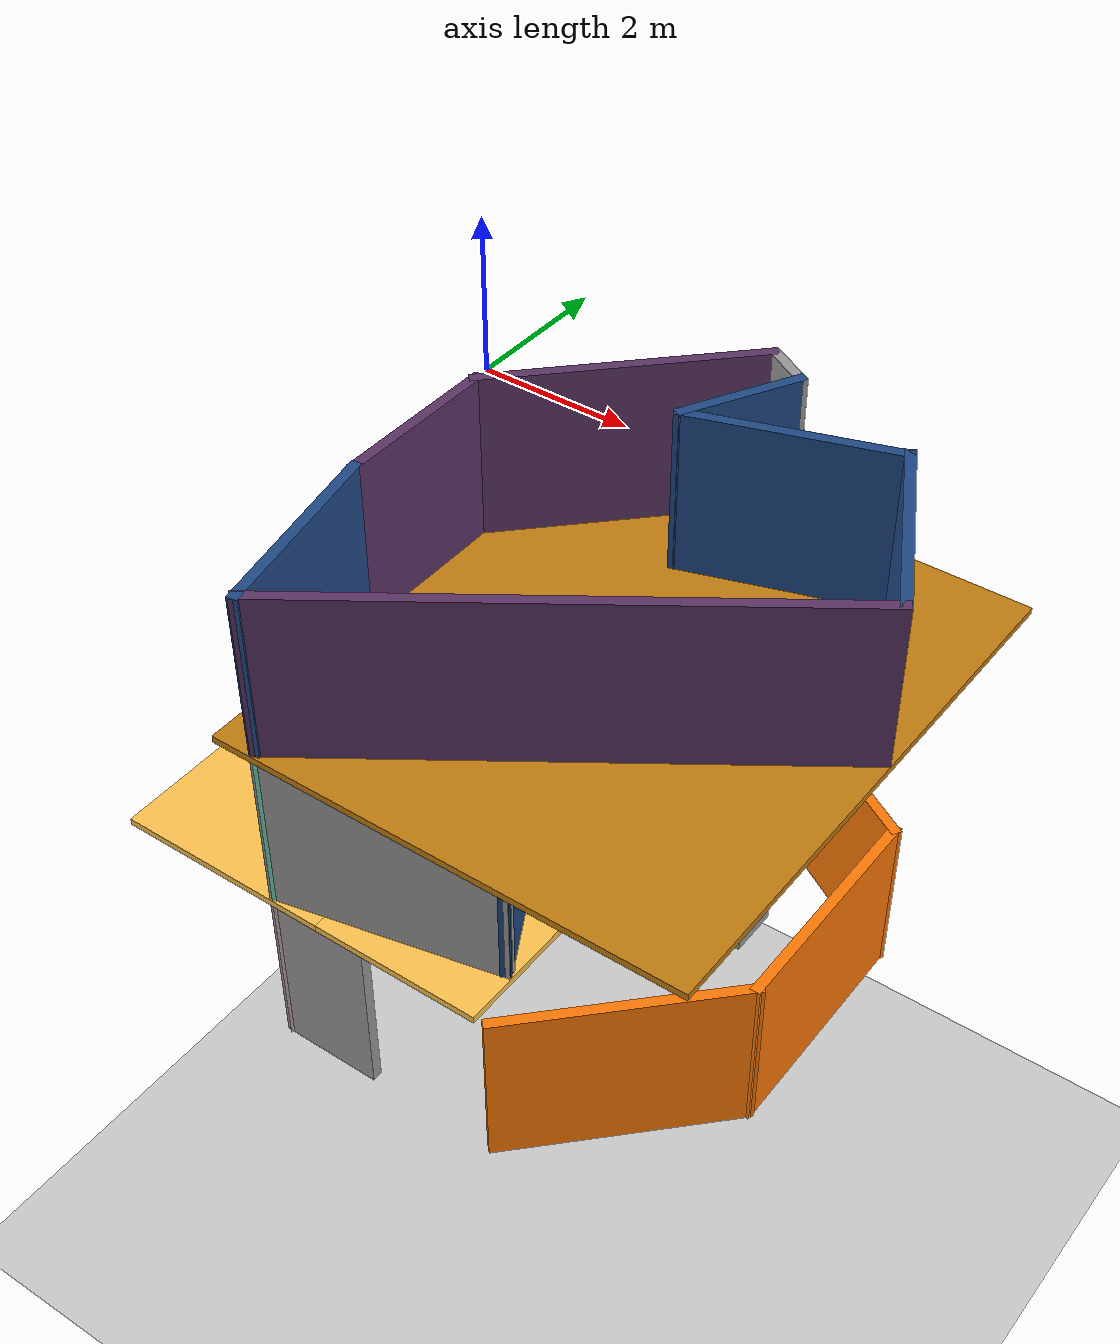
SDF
<?xml version="1.0" ?>
<sdf version='1.7'>
  <world name='default'>
    <light name='sun' type='directional'>
      <cast_shadows>1</cast_shadows>
      <pose>0 0 10 0 -0 0</pose>
      <diffuse>0.8 0.8 0.8 1</diffuse>
      <specular>0.2 0.2 0.2 1</specular>
      <attenuation>
        <range>1000</range>
        <constant>0.9</constant>
        <linear>0.01</linear>
        <quadratic>0.001</quadratic>
      </attenuation>
      <direction>-0.5 0.1 -0.9</direction>
      <spot>
        <inner_angle>0</inner_angle>
        <outer_angle>0</outer_angle>
        <falloff>0</falloff>
      </spot>
    </light>

    <model name='ground_plane'>
      <pose>1.18397 -0.303096 -15 0 -0 0</pose>
      <static>1</static>
      <link name='link'>
        <collision name='collision'>
          <geometry>
            <plane>
              <normal>0 0 1</normal>
              <size>100 100</size>
            </plane>
          </geometry>
          <surface>
            <friction>
              <ode>
                <mu>100</mu>
                <mu2>50</mu2>
              </ode>
              <torsional>
                <ode/>
              </torsional>
            </friction>
            <contact>
              <ode/>
            </contact>
            <bounce/>
          </surface>
          <max_contacts>10</max_contacts>
        </collision>
        <visual name='visual'>
          <cast_shadows>0</cast_shadows>
          <geometry>
            <plane>
              <normal>0 0 1</normal>
              <size>100 100</size>
            </plane>
          </geometry>
          <material>
            <script>
              <uri>file://media/materials/scripts/gazebo.material</uri>
              <name>Gazebo/Grey</name>
            </script>
          </material>
        </visual>
        <self_collide>0</self_collide>
        <enable_wind>0</enable_wind>
        <kinematic>0</kinematic>
      </link>
    </model>

    <gravity>0 0 -9.8</gravity>
    <magnetic_field>6e-06 2.3e-05 -4.2e-05</magnetic_field>
    <atmosphere type='adiabatic'/>
    <physics type='ode'>
      <max_step_size>0.001</max_step_size>
      <real_time_factor>1</real_time_factor>
      <real_time_update_rate>1000</real_time_update_rate>
    </physics>
    <scene>
      <ambient>0.4 0.4 0.4 1</ambient>
      <background>0.7 0.7 0.7 1</background>
      <shadows>1</shadows>
    </scene>
    <wind/>
    <spherical_coordinates>
      <surface_model>EARTH_WGS84</surface_model>
      <latitude_deg>0</latitude_deg>
      <longitude_deg>0</longitude_deg>
      <elevation>0</elevation>
      <heading_deg>0</heading_deg>
    </spherical_coordinates>
    <model name='wackHouse'>
      <pose>1.18397 -0.303096 -8.5 0 -0 0</pose>
      <link name='Floor_0'>
        <pose>-1.28832 0 2.5 0 -0 0</pose>
        <visual name='Floor_0_Visual_0'>
          <pose>-1.25732 0 0.05 0 -0 0</pose>
          <geometry>
            <box>
              <size>3.21268 7.60594 0.1</size>
            </box>
          </geometry>
          <material>
            <script>
              <uri>file://media/materials/scripts/gazebo.material</uri>
              <name>Gazebo/Grey</name>
            </script>
            <ambient>1 0.764706 0.305882 1</ambient>
          </material>
          <meta>
            <layer>1</layer>
          </meta>
        </visual>
        <collision name='Floor_0_Collision_0'>
          <geometry>
            <box>
              <size>3.21268 7.60594 0.1</size>
            </box>
          </geometry>
          <pose>-1.25732 0 0.05 0 -0 0</pose>
          <max_contacts>10</max_contacts>
          <surface>
            <contact>
              <ode/>
            </contact>
            <bounce/>
            <friction>
              <torsional>
                <ode/>
              </torsional>
              <ode/>
            </friction>
          </surface>
        </collision>
        <visual name='Floor_0_Visual_1'>
          <pose>1.60634 -1.40986 0.05 0 -0 0</pose>
          <geometry>
            <box>
              <size>2.51465 4.78622 0.1</size>
            </box>
          </geometry>
          <material>
            <script>
              <uri>file://media/materials/scripts/gazebo.material</uri>
              <name>Gazebo/Grey</name>
            </script>
            <ambient>1 0.764706 0.305882 1</ambient>
          </material>
          <meta>
            <layer>1</layer>
          </meta>
        </visual>
        <collision name='Floor_0_Collision_1'>
          <geometry>
            <box>
              <size>2.51465 4.78622 0.1</size>
            </box>
          </geometry>
          <pose>1.60634 -1.40986 0.05 0 -0 0</pose>
          <max_contacts>10</max_contacts>
          <surface>
            <contact>
              <ode/>
            </contact>
            <bounce/>
            <friction>
              <torsional>
                <ode/>
              </torsional>
              <ode/>
            </friction>
          </surface>
        </collision>
        <visual name='Floor_0_Visual_2'>
          <pose>1.60634 2.78006 0.05 0 -0 0</pose>
          <geometry>
            <box>
              <size>2.51465 2.04583 0.1</size>
            </box>
          </geometry>
          <material>
            <script>
              <uri>file://media/materials/scripts/gazebo.material</uri>
              <name>Gazebo/Grey</name>
            </script>
            <ambient>1 0.764706 0.305882 1</ambient>
          </material>
          <meta>
            <layer>1</layer>
          </meta>
        </visual>
        <collision name='Floor_0_Collision_2'>
          <geometry>
            <box>
              <size>2.51465 2.04583 0.1</size>
            </box>
          </geometry>
          <pose>1.60634 2.78006 0.05 0 -0 0</pose>
          <max_contacts>10</max_contacts>
          <surface>
            <contact>
              <ode/>
            </contact>
            <bounce/>
            <friction>
              <torsional>
                <ode/>
              </torsional>
              <ode/>
            </friction>
          </surface>
        </collision>
        <self_collide>0</self_collide>
        <enable_wind>0</enable_wind>
        <kinematic>0</kinematic>
      </link>
      <link name='Floor_1'>
        <collision name='Floor_1_Collision'>
          <geometry>
            <box>
              <size>6.84258 7.94464 0.1</size>
            </box>
          </geometry>
          <pose>0 0 0.05 0 -0 0</pose>
          <max_contacts>10</max_contacts>
          <surface>
            <contact>
              <ode/>
            </contact>
            <bounce/>
            <friction>
              <torsional>
                <ode/>
              </torsional>
              <ode/>
            </friction>
          </surface>
        </collision>
        <visual name='Floor_1_Visual'>
          <pose>0 0 0.05 0 -0 0</pose>
          <geometry>
            <box>
              <size>6.84258 7.94464 0.1</size>
            </box>
          </geometry>
          <material>
            <script>
              <uri>file://media/materials/scripts/gazebo.material</uri>
              <name>Gazebo/Grey</name>
            </script>
            <ambient>0.756863 0.490196 0.0666667 1</ambient>
          </material>
          <meta>
            <layer>2</layer>
          </meta>
        </visual>
        <pose>1.13026 0.171097 5 0 -0 0</pose>
        <self_collide>0</self_collide>
        <enable_wind>0</enable_wind>
        <kinematic>0</kinematic>
      </link>
      <link name='Stairs_0'>
        <visual name='Stairs_0_Visual_0'>
          <pose>2.32831 1.37019 0.083333 0 -0 -1.5708</pose>
          <geometry>
            <box>
              <size>0.773898 0.225353 0.166667</size>
            </box>
          </geometry>
          <material>
            <script>
              <uri>file://media/materials/scripts/gazebo.material</uri>
              <name>Gazebo/Grey</name>
            </script>
            <ambient>1 1 1 1</ambient>
          </material>
          <meta>
            <layer>0</layer>
          </meta>
        </visual>
        <collision name='Stairs_0_Collision_0'>
          <geometry>
            <box>
              <size>0.773898 0.225353 0.166667</size>
            </box>
          </geometry>
          <pose>2.32831 1.37019 0.083333 0 -0 -1.5708</pose>
          <max_contacts>10</max_contacts>
          <surface>
            <contact>
              <ode/>
            </contact>
            <bounce/>
            <friction>
              <torsional>
                <ode/>
              </torsional>
              <ode/>
            </friction>
          </surface>
        </collision>
        <visual name='Stairs_0_Visual_1'>
          <pose>2.10296 1.37019 0.25 0 -0 -1.5708</pose>
          <geometry>
            <box>
              <size>0.773898 0.225353 0.166667</size>
            </box>
          </geometry>
          <material>
            <script>
              <uri>file://media/materials/scripts/gazebo.material</uri>
              <name>Gazebo/Grey</name>
            </script>
            <ambient>1 1 1 1</ambient>
          </material>
          <meta>
            <layer>0</layer>
          </meta>
        </visual>
        <collision name='Stairs_0_Collision_1'>
          <geometry>
            <box>
              <size>0.773898 0.225353 0.166667</size>
            </box>
          </geometry>
          <pose>2.10296 1.37019 0.25 0 -0 -1.5708</pose>
          <max_contacts>10</max_contacts>
          <surface>
            <contact>
              <ode/>
            </contact>
            <bounce/>
            <friction>
              <torsional>
                <ode/>
              </torsional>
              <ode/>
            </friction>
          </surface>
        </collision>
        <visual name='Stairs_0_Visual_2'>
          <pose>1.87761 1.37019 0.416667 0 -0 -1.5708</pose>
          <geometry>
            <box>
              <size>0.773898 0.225353 0.166667</size>
            </box>
          </geometry>
          <material>
            <script>
              <uri>file://media/materials/scripts/gazebo.material</uri>
              <name>Gazebo/Grey</name>
            </script>
            <ambient>1 1 1 1</ambient>
          </material>
          <meta>
            <layer>0</layer>
          </meta>
        </visual>
        <collision name='Stairs_0_Collision_2'>
          <geometry>
            <box>
              <size>0.773898 0.225353 0.166667</size>
            </box>
          </geometry>
          <pose>1.87761 1.37019 0.416667 0 -0 -1.5708</pose>
          <max_contacts>10</max_contacts>
          <surface>
            <contact>
              <ode/>
            </contact>
            <bounce/>
            <friction>
              <torsional>
                <ode/>
              </torsional>
              <ode/>
            </friction>
          </surface>
        </collision>
        <visual name='Stairs_0_Visual_3'>
          <pose>1.65225 1.37019 0.583333 0 -0 -1.5708</pose>
          <geometry>
            <box>
              <size>0.773898 0.225353 0.166667</size>
            </box>
          </geometry>
          <material>
            <script>
              <uri>file://media/materials/scripts/gazebo.material</uri>
              <name>Gazebo/Grey</name>
            </script>
            <ambient>1 1 1 1</ambient>
          </material>
          <meta>
            <layer>0</layer>
          </meta>
        </visual>
        <collision name='Stairs_0_Collision_3'>
          <geometry>
            <box>
              <size>0.773898 0.225353 0.166667</size>
            </box>
          </geometry>
          <pose>1.65225 1.37019 0.583333 0 -0 -1.5708</pose>
          <max_contacts>10</max_contacts>
          <surface>
            <contact>
              <ode/>
            </contact>
            <bounce/>
            <friction>
              <torsional>
                <ode/>
              </torsional>
              <ode/>
            </friction>
          </surface>
        </collision>
        <visual name='Stairs_0_Visual_4'>
          <pose>1.4269 1.37019 0.75 0 -0 -1.5708</pose>
          <geometry>
            <box>
              <size>0.773898 0.225353 0.166667</size>
            </box>
          </geometry>
          <material>
            <script>
              <uri>file://media/materials/scripts/gazebo.material</uri>
              <name>Gazebo/Grey</name>
            </script>
            <ambient>1 1 1 1</ambient>
          </material>
          <meta>
            <layer>0</layer>
          </meta>
        </visual>
        <collision name='Stairs_0_Collision_4'>
          <geometry>
            <box>
              <size>0.773898 0.225353 0.166667</size>
            </box>
          </geometry>
          <pose>1.4269 1.37019 0.75 0 -0 -1.5708</pose>
          <max_contacts>10</max_contacts>
          <surface>
            <contact>
              <ode/>
            </contact>
            <bounce/>
            <friction>
              <torsional>
                <ode/>
              </torsional>
              <ode/>
            </friction>
          </surface>
        </collision>
        <visual name='Stairs_0_Visual_5'>
          <pose>1.20155 1.3702 0.916667 0 -0 -1.5708</pose>
          <geometry>
            <box>
              <size>0.773898 0.225353 0.166667</size>
            </box>
          </geometry>
          <material>
            <script>
              <uri>file://media/materials/scripts/gazebo.material</uri>
              <name>Gazebo/Grey</name>
            </script>
            <ambient>1 1 1 1</ambient>
          </material>
          <meta>
            <layer>0</layer>
          </meta>
        </visual>
        <collision name='Stairs_0_Collision_5'>
          <geometry>
            <box>
              <size>0.773898 0.225353 0.166667</size>
            </box>
          </geometry>
          <pose>1.20155 1.3702 0.916667 0 -0 -1.5708</pose>
          <max_contacts>10</max_contacts>
          <surface>
            <contact>
              <ode/>
            </contact>
            <bounce/>
            <friction>
              <torsional>
                <ode/>
              </torsional>
              <ode/>
            </friction>
          </surface>
        </collision>
        <visual name='Stairs_0_Visual_6'>
          <pose>0.976193 1.3702 1.08333 0 -0 -1.5708</pose>
          <geometry>
            <box>
              <size>0.773898 0.225353 0.166667</size>
            </box>
          </geometry>
          <material>
            <script>
              <uri>file://media/materials/scripts/gazebo.material</uri>
              <name>Gazebo/Grey</name>
            </script>
            <ambient>1 1 1 1</ambient>
          </material>
          <meta>
            <layer>0</layer>
          </meta>
        </visual>
        <collision name='Stairs_0_Collision_6'>
          <geometry>
            <box>
              <size>0.773898 0.225353 0.166667</size>
            </box>
          </geometry>
          <pose>0.976193 1.3702 1.08333 0 -0 -1.5708</pose>
          <max_contacts>10</max_contacts>
          <surface>
            <contact>
              <ode/>
            </contact>
            <bounce/>
            <friction>
              <torsional>
                <ode/>
              </torsional>
              <ode/>
            </friction>
          </surface>
        </collision>
        <visual name='Stairs_0_Visual_7'>
          <pose>0.75084 1.3702 1.25 0 -0 -1.5708</pose>
          <geometry>
            <box>
              <size>0.773898 0.225353 0.166667</size>
            </box>
          </geometry>
          <material>
            <script>
              <uri>file://media/materials/scripts/gazebo.material</uri>
              <name>Gazebo/Grey</name>
            </script>
            <ambient>1 1 1 1</ambient>
          </material>
          <meta>
            <layer>0</layer>
          </meta>
        </visual>
        <collision name='Stairs_0_Collision_7'>
          <geometry>
            <box>
              <size>0.773898 0.225353 0.166667</size>
            </box>
          </geometry>
          <pose>0.75084 1.3702 1.25 0 -0 -1.5708</pose>
          <max_contacts>10</max_contacts>
          <surface>
            <contact>
              <ode/>
            </contact>
            <bounce/>
            <friction>
              <torsional>
                <ode/>
              </torsional>
              <ode/>
            </friction>
          </surface>
        </collision>
        <visual name='Stairs_0_Visual_8'>
          <pose>0.525486 1.3702 1.41667 0 -0 -1.5708</pose>
          <geometry>
            <box>
              <size>0.773898 0.225353 0.166667</size>
            </box>
          </geometry>
          <material>
            <script>
              <uri>file://media/materials/scripts/gazebo.material</uri>
              <name>Gazebo/Grey</name>
            </script>
            <ambient>1 1 1 1</ambient>
          </material>
          <meta>
            <layer>0</layer>
          </meta>
        </visual>
        <collision name='Stairs_0_Collision_8'>
          <geometry>
            <box>
              <size>0.773898 0.225353 0.166667</size>
            </box>
          </geometry>
          <pose>0.525486 1.3702 1.41667 0 -0 -1.5708</pose>
          <max_contacts>10</max_contacts>
          <surface>
            <contact>
              <ode/>
            </contact>
            <bounce/>
            <friction>
              <torsional>
                <ode/>
              </torsional>
              <ode/>
            </friction>
          </surface>
        </collision>
        <visual name='Stairs_0_Visual_9'>
          <pose>0.300133 1.3702 1.58333 0 -0 -1.5708</pose>
          <geometry>
            <box>
              <size>0.773898 0.225353 0.166667</size>
            </box>
          </geometry>
          <material>
            <script>
              <uri>file://media/materials/scripts/gazebo.material</uri>
              <name>Gazebo/Grey</name>
            </script>
            <ambient>1 1 1 1</ambient>
          </material>
          <meta>
            <layer>0</layer>
          </meta>
        </visual>
        <collision name='Stairs_0_Collision_9'>
          <geometry>
            <box>
              <size>0.773898 0.225353 0.166667</size>
            </box>
          </geometry>
          <pose>0.300133 1.3702 1.58333 0 -0 -1.5708</pose>
          <max_contacts>10</max_contacts>
          <surface>
            <contact>
              <ode/>
            </contact>
            <bounce/>
            <friction>
              <torsional>
                <ode/>
              </torsional>
              <ode/>
            </friction>
          </surface>
        </collision>
        <visual name='Stairs_0_Visual_10'>
          <pose>0.07478 1.3702 1.75 0 -0 -1.5708</pose>
          <geometry>
            <box>
              <size>0.773898 0.225353 0.166667</size>
            </box>
          </geometry>
          <material>
            <script>
              <uri>file://media/materials/scripts/gazebo.material</uri>
              <name>Gazebo/Grey</name>
            </script>
            <ambient>1 1 1 1</ambient>
          </material>
          <meta>
            <layer>0</layer>
          </meta>
        </visual>
        <collision name='Stairs_0_Collision_10'>
          <geometry>
            <box>
              <size>0.773898 0.225353 0.166667</size>
            </box>
          </geometry>
          <pose>0.07478 1.3702 1.75 0 -0 -1.5708</pose>
          <max_contacts>10</max_contacts>
          <surface>
            <contact>
              <ode/>
            </contact>
            <bounce/>
            <friction>
              <torsional>
                <ode/>
              </torsional>
              <ode/>
            </friction>
          </surface>
        </collision>
        <visual name='Stairs_0_Visual_11'>
          <pose>-0.150573 1.3702 1.91667 0 -0 -1.5708</pose>
          <geometry>
            <box>
              <size>0.773898 0.225353 0.166667</size>
            </box>
          </geometry>
          <material>
            <script>
              <uri>file://media/materials/scripts/gazebo.material</uri>
              <name>Gazebo/Grey</name>
            </script>
            <ambient>1 1 1 1</ambient>
          </material>
          <meta>
            <layer>0</layer>
          </meta>
        </visual>
        <collision name='Stairs_0_Collision_11'>
          <geometry>
            <box>
              <size>0.773898 0.225353 0.166667</size>
            </box>
          </geometry>
          <pose>-0.150573 1.3702 1.91667 0 -0 -1.5708</pose>
          <max_contacts>10</max_contacts>
          <surface>
            <contact>
              <ode/>
            </contact>
            <bounce/>
            <friction>
              <torsional>
                <ode/>
              </torsional>
              <ode/>
            </friction>
          </surface>
        </collision>
        <visual name='Stairs_0_Visual_12'>
          <pose>-0.375927 1.3702 2.08333 0 -0 -1.5708</pose>
          <geometry>
            <box>
              <size>0.773898 0.225353 0.166667</size>
            </box>
          </geometry>
          <material>
            <script>
              <uri>file://media/materials/scripts/gazebo.material</uri>
              <name>Gazebo/Grey</name>
            </script>
            <ambient>1 1 1 1</ambient>
          </material>
          <meta>
            <layer>0</layer>
          </meta>
        </visual>
        <collision name='Stairs_0_Collision_12'>
          <geometry>
            <box>
              <size>0.773898 0.225353 0.166667</size>
            </box>
          </geometry>
          <pose>-0.375927 1.3702 2.08333 0 -0 -1.5708</pose>
          <max_contacts>10</max_contacts>
          <surface>
            <contact>
              <ode/>
            </contact>
            <bounce/>
            <friction>
              <torsional>
                <ode/>
              </torsional>
              <ode/>
            </friction>
          </surface>
        </collision>
        <visual name='Stairs_0_Visual_13'>
          <pose>-0.60128 1.3702 2.25 0 -0 -1.5708</pose>
          <geometry>
            <box>
              <size>0.773898 0.225353 0.166667</size>
            </box>
          </geometry>
          <material>
            <script>
              <uri>file://media/materials/scripts/gazebo.material</uri>
              <name>Gazebo/Grey</name>
            </script>
            <ambient>1 1 1 1</ambient>
          </material>
          <meta>
            <layer>0</layer>
          </meta>
        </visual>
        <collision name='Stairs_0_Collision_13'>
          <geometry>
            <box>
              <size>0.773898 0.225353 0.166667</size>
            </box>
          </geometry>
          <pose>-0.60128 1.3702 2.25 0 -0 -1.5708</pose>
          <max_contacts>10</max_contacts>
          <surface>
            <contact>
              <ode/>
            </contact>
            <bounce/>
            <friction>
              <torsional>
                <ode/>
              </torsional>
              <ode/>
            </friction>
          </surface>
        </collision>
        <visual name='Stairs_0_Visual_14'>
          <pose>-0.826633 1.3702 2.41667 0 -0 -1.5708</pose>
          <geometry>
            <box>
              <size>0.773898 0.225353 0.166667</size>
            </box>
          </geometry>
          <material>
            <script>
              <uri>file://media/materials/scripts/gazebo.material</uri>
              <name>Gazebo/Grey</name>
            </script>
            <ambient>1 1 1 1</ambient>
          </material>
          <meta>
            <layer>0</layer>
          </meta>
        </visual>
        <collision name='Stairs_0_Collision_14'>
          <geometry>
            <box>
              <size>0.773898 0.225353 0.166667</size>
            </box>
          </geometry>
          <pose>-0.826633 1.3702 2.41667 0 -0 -1.5708</pose>
          <max_contacts>10</max_contacts>
          <surface>
            <contact>
              <ode/>
            </contact>
            <bounce/>
            <friction>
              <torsional>
                <ode/>
              </torsional>
              <ode/>
            </friction>
          </surface>
        </collision>
        <self_collide>0</self_collide>
        <enable_wind>0</enable_wind>
        <kinematic>0</kinematic>
      </link>
      <link name='Wall_10'>
        <collision name='Wall_10_Collision'>
          <geometry>
            <box>
              <size>3.25 0.15 2.5</size>
            </box>
          </geometry>
          <pose>0 0 1.25 0 -0 0</pose>
          <max_contacts>10</max_contacts>
          <surface>
            <contact>
              <ode/>
            </contact>
            <bounce/>
            <friction>
              <torsional>
                <ode/>
              </torsional>
              <ode/>
            </friction>
          </surface>
        </collision>
        <visual name='Wall_10_Visual'>
          <pose>0 0 1.25 0 -0 0</pose>
          <geometry>
            <box>
              <size>3.25 0.15 2.5</size>
            </box>
          </geometry>
          <material>
            <script>
              <uri>file://media/materials/scripts/gazebo.material</uri>
              <name>Gazebo/Grey</name>
            </script>
            <ambient>0.435294 0.796078 0.67451 1</ambient>
          </material>
          <meta>
            <layer>0</layer>
          </meta>
        </visual>
        <pose>-4.02255 0.221904 0 0 -0 1.5708</pose>
        <self_collide>0</self_collide>
        <enable_wind>0</enable_wind>
        <kinematic>0</kinematic>
      </link>
      <link name='Wall_12'>
        <collision name='Wall_12_Collision'>
          <geometry>
            <box>
              <size>3.35222 0.15 2.5</size>
            </box>
          </geometry>
          <pose>0 0 1.25 0 -0 0</pose>
          <max_contacts>10</max_contacts>
          <surface>
            <contact>
              <ode/>
            </contact>
            <bounce/>
            <friction>
              <torsional>
                <ode/>
              </torsional>
              <ode/>
            </friction>
          </surface>
        </collision>
        <visual name='Wall_12_Visual'>
          <pose>0 0 1.25 0 -0 0</pose>
          <geometry>
            <box>
              <size>3.35222 0.15 2.5</size>
            </box>
          </geometry>
          <material>
            <script>
              <uri>file://media/materials/scripts/gazebo.material</uri>
              <name>Gazebo/Grey</name>
            </script>
            <ambient>1 1 1 1</ambient>
          </material>
          <meta>
            <layer>1</layer>
          </meta>
        </visual>
        <pose>-0.089999 -3.35303 2.5 0 -0 0.216458</pose>
        <self_collide>0</self_collide>
        <enable_wind>0</enable_wind>
        <kinematic>0</kinematic>
      </link>
      <link name='Wall_13'>
        <collision name='Wall_13_Collision'>
          <geometry>
            <box>
              <size>3.04705 0.15 2.5</size>
            </box>
          </geometry>
          <pose>0 0 1.25 0 -0 0</pose>
          <max_contacts>10</max_contacts>
          <surface>
            <contact>
              <ode/>
            </contact>
            <bounce/>
            <friction>
              <torsional>
                <ode/>
              </torsional>
              <ode/>
            </friction>
          </surface>
        </collision>
        <visual name='Wall_13_Visual'>
          <pose>0 0 1.25 0 -0 0</pose>
          <geometry>
            <box>
              <size>3.04705 0.15 2.5</size>
            </box>
          </geometry>
          <material>
            <script>
              <uri>file://media/materials/scripts/gazebo.material</uri>
              <name>Gazebo/Grey</name>
            </script>
            <ambient>0.12549 0.290196 0.529412 1</ambient>
          </material>
          <meta>
            <layer>1</layer>
          </meta>
        </visual>
        <pose>0.787081 -1.73373 2.5 0 -0 2.06467</pose>
        <self_collide>0</self_collide>
        <enable_wind>0</enable_wind>
        <kinematic>0</kinematic>
      </link>
      <link name='Wall_14'>
        <collision name='Wall_14_Collision'>
          <geometry>
            <box>
              <size>2.80315 0.15 2.5</size>
            </box>
          </geometry>
          <pose>0 0 1.25 0 -0 0</pose>
          <max_contacts>10</max_contacts>
          <surface>
            <contact>
              <ode/>
            </contact>
            <bounce/>
            <friction>
              <torsional>
                <ode/>
              </torsional>
              <ode/>
            </friction>
          </surface>
        </collision>
        <visual name='Wall_14_Visual'>
          <pose>0 0 1.25 0 -0 0</pose>
          <geometry>
            <box>
              <size>2.80315 0.15 2.5</size>
            </box>
          </geometry>
          <material>
            <script>
              <uri>file://media/materials/scripts/gazebo.material</uri>
              <name>Gazebo/Grey</name>
            </script>
            <ambient>0.760784 0.662745 0.627451 1</ambient>
          </material>
          <meta>
            <layer>1</layer>
          </meta>
        </visual>
        <pose>0.221782 0.862713 2.5 0 -0 1.47918</pose>
        <self_collide>0</self_collide>
        <enable_wind>0</enable_wind>
        <kinematic>0</kinematic>
      </link>
      <link name='Wall_15'>
        <collision name='Wall_15_Collision'>
          <geometry>
            <box>
              <size>1.84402 0.15 2.5</size>
            </box>
          </geometry>
          <pose>0 0 1.25 0 -0 0</pose>
          <max_contacts>10</max_contacts>
          <surface>
            <contact>
              <ode/>
            </contact>
            <bounce/>
            <friction>
              <torsional>
                <ode/>
              </torsional>
              <ode/>
            </friction>
          </surface>
        </collision>
        <visual name='Wall_15_Visual'>
          <pose>0 0 1.25 0 -0 0</pose>
          <geometry>
            <box>
              <size>1.84402 0.15 2.5</size>
            </box>
          </geometry>
          <material>
            <script>
              <uri>file://media/materials/scripts/gazebo.material</uri>
              <name>Gazebo/Grey</name>
            </script>
            <ambient>0.760784 0.662745 0.627451 1</ambient>
          </material>
          <meta>
            <layer>1</layer>
          </meta>
        </visual>
        <pose>0.743398 2.95043 2.5 0 -0 1.07862</pose>
        <self_collide>0</self_collide>
        <enable_wind>0</enable_wind>
        <kinematic>0</kinematic>
      </link>
      <link name='Wall_16'>
        <collision name='Wall_16_Collision'>
          <geometry>
            <box>
              <size>2.64396 0.15 2.5</size>
            </box>
          </geometry>
          <pose>0 0 1.25 0 -0 0</pose>
          <max_contacts>10</max_contacts>
          <surface>
            <contact>
              <ode/>
            </contact>
            <bounce/>
            <friction>
              <torsional>
                <ode/>
              </torsional>
              <ode/>
            </friction>
          </surface>
        </collision>
        <visual name='Wall_16_Visual'>
          <pose>0 0 1.25 0 -0 0</pose>
          <geometry>
            <box>
              <size>2.64396 0.15 2.5</size>
            </box>
          </geometry>
          <material>
            <script>
              <uri>file://media/materials/scripts/gazebo.material</uri>
              <name>Gazebo/Grey</name>
            </script>
            <ambient>0.937255 0.160784 0.160784 1</ambient>
          </material>
          <meta>
            <layer>1</layer>
          </meta>
        </visual>
        <pose>-0.103331 3.6969 2.5 0 -0 3.14159</pose>
        <self_collide>0</self_collide>
        <enable_wind>0</enable_wind>
        <kinematic>0</kinematic>
      </link>
      <link name='Wall_17'>
        <collision name='Wall_17_Collision'>
          <geometry>
            <box>
              <size>4 0.15 2.5</size>
            </box>
          </geometry>
          <pose>0 0 1.25 0 -0 0</pose>
          <max_contacts>10</max_contacts>
          <surface>
            <contact>
              <ode/>
            </contact>
            <bounce/>
            <friction>
              <torsional>
                <ode/>
              </torsional>
              <ode/>
            </friction>
          </surface>
        </collision>
        <visual name='Wall_17_Visual'>
          <pose>0 0 1.25 0 -0 0</pose>
          <geometry>
            <box>
              <size>4 0.15 2.5</size>
            </box>
          </geometry>
          <material>
            <script>
              <uri>file://media/materials/scripts/gazebo.material</uri>
              <name>Gazebo/Grey</name>
            </script>
            <ambient>0.937255 0.160784 0.160784 1</ambient>
          </material>
          <meta>
            <layer>1</layer>
          </meta>
        </visual>
        <pose>-2.68474 2.33572 2.5 0 -0 -2.35619</pose>
        <self_collide>0</self_collide>
        <enable_wind>0</enable_wind>
        <kinematic>0</kinematic>
      </link>
      <link name='Wall_18'>
        <collision name='Wall_18_Collision'>
          <geometry>
            <box>
              <size>3.5 0.15 2.5</size>
            </box>
          </geometry>
          <pose>0 0 1.25 0 -0 0</pose>
          <max_contacts>10</max_contacts>
          <surface>
            <contact>
              <ode/>
            </contact>
            <bounce/>
            <friction>
              <torsional>
                <ode/>
              </torsional>
              <ode/>
            </friction>
          </surface>
        </collision>
        <visual name='Wall_18_Visual'>
          <pose>0 0 1.25 0 -0 0</pose>
          <geometry>
            <box>
              <size>3.5 0.15 2.5</size>
            </box>
          </geometry>
          <material>
            <script>
              <uri>file://media/materials/scripts/gazebo.material</uri>
              <name>Gazebo/Grey</name>
            </script>
            <ambient>0.435294 0.796078 0.67451 1</ambient>
          </material>
          <meta>
            <layer>1</layer>
          </meta>
        </visual>
        <pose>-2.83815 -2.5125 2.5 0 -0 2.35619</pose>
        <self_collide>0</self_collide>
        <enable_wind>0</enable_wind>
        <kinematic>0</kinematic>
      </link>
      <link name='Wall_19'>
        <collision name='Wall_19_Collision'>
          <geometry>
            <box>
              <size>2.5 0.15 2.5</size>
            </box>
          </geometry>
          <pose>0 0 1.25 0 -0 0</pose>
          <max_contacts>10</max_contacts>
          <surface>
            <contact>
              <ode/>
            </contact>
            <bounce/>
            <friction>
              <torsional>
                <ode/>
              </torsional>
              <ode/>
            </friction>
          </surface>
        </collision>
        <visual name='Wall_19_Visual'>
          <pose>0 0 1.25 0 -0 0</pose>
          <geometry>
            <box>
              <size>2.5 0.15 2.5</size>
            </box>
          </geometry>
          <material>
            <script>
              <uri>file://media/materials/scripts/gazebo.material</uri>
              <name>Gazebo/Grey</name>
            </script>
            <ambient>0.937255 0.160784 0.160784 1</ambient>
          </material>
          <meta>
            <layer>1</layer>
          </meta>
        </visual>
        <pose>-4.02255 -0.153096 2.5 0 -0 1.5708</pose>
        <self_collide>0</self_collide>
        <enable_wind>0</enable_wind>
        <kinematic>0</kinematic>
      </link>
      <link name='Wall_2'>
        <collision name='Wall_2_Collision'>
          <geometry>
            <box>
              <size>3.47152 0.15 2.5</size>
            </box>
          </geometry>
          <pose>0 0 1.25 0 -0 0</pose>
          <max_contacts>10</max_contacts>
          <surface>
            <contact>
              <ode/>
            </contact>
            <bounce/>
            <friction>
              <torsional>
                <ode/>
              </torsional>
              <ode/>
            </friction>
          </surface>
        </collision>
        <visual name='Wall_2_Visual'>
          <pose>0 0 1.25 0 -0 0</pose>
          <geometry>
            <box>
              <size>3.47152 0.15 2.5</size>
            </box>
          </geometry>
          <material>
            <script>
              <uri>file://media/materials/scripts/gazebo.material</uri>
              <name>Gazebo/Grey</name>
            </script>
            <ambient>0.996078 0.47451 0.0196078 1</ambient>
          </material>
          <meta>
            <layer>0</layer>
          </meta>
        </visual>
        <pose>2.88066 -2.5125 0 0 -0 0.794011</pose>
        <self_collide>0</self_collide>
        <enable_wind>0</enable_wind>
        <kinematic>0</kinematic>
      </link>
      <link name='Wall_20'>
        <collision name='Wall_20_Collision'>
          <geometry>
            <box>
              <size>7.56107 0.15 2.5</size>
            </box>
          </geometry>
          <pose>0 0 1.25 0 -0 0</pose>
          <max_contacts>10</max_contacts>
          <surface>
            <contact>
              <ode/>
            </contact>
            <bounce/>
            <friction>
              <torsional>
                <ode/>
              </torsional>
              <ode/>
            </friction>
          </surface>
        </collision>
        <visual name='Wall_20_Visual'>
          <pose>0 0 1.25 0 -0 0</pose>
          <geometry>
            <box>
              <size>7.56107 0.15 2.5</size>
            </box>
          </geometry>
          <material>
            <script>
              <uri>file://media/materials/scripts/gazebo.material</uri>
              <name>Gazebo/Grey</name>
            </script>
            <ambient>0.360784 0.207843 0.4 1</ambient>
          </material>
          <meta>
            <layer>2</layer>
          </meta>
        </visual>
        <pose>1.39674 -1.59321 5 0 -0 0.603728</pose>
        <self_collide>0</self_collide>
        <enable_wind>0</enable_wind>
        <kinematic>0</kinematic>
      </link>
      <link name='Wall_21'>
        <collision name='Wall_21_Collision'>
          <geometry>
            <box>
              <size>3.04705 0.15 2.5</size>
            </box>
          </geometry>
          <pose>0 0 1.25 0 -0 0</pose>
          <max_contacts>10</max_contacts>
          <surface>
            <contact>
              <ode/>
            </contact>
            <bounce/>
            <friction>
              <torsional>
                <ode/>
              </torsional>
              <ode/>
            </friction>
          </surface>
        </collision>
        <visual name='Wall_21_Visual'>
          <pose>0 0 1.25 0 -0 0</pose>
          <geometry>
            <box>
              <size>3.04705 0.15 2.5</size>
            </box>
          </geometry>
          <material>
            <script>
              <uri>file://media/materials/scripts/gazebo.material</uri>
              <name>Gazebo/Grey</name>
            </script>
            <ambient>0.12549 0.290196 0.529412 1</ambient>
          </material>
          <meta>
            <layer>2</layer>
          </meta>
        </visual>
        <pose>3.76057 1.80613 5 0 -0 2.06467</pose>
        <self_collide>0</self_collide>
        <enable_wind>0</enable_wind>
        <kinematic>0</kinematic>
      </link>
      <link name='Wall_22'>
        <collision name='Wall_22_Collision'>
          <geometry>
            <box>
              <size>3.01831 0.15 2.5</size>
            </box>
          </geometry>
          <pose>0 0 1.25 0 -0 0</pose>
          <max_contacts>10</max_contacts>
          <surface>
            <contact>
              <ode/>
            </contact>
            <bounce/>
            <friction>
              <torsional>
                <ode/>
              </torsional>
              <ode/>
            </friction>
          </surface>
        </collision>
        <visual name='Wall_22_Visual'>
          <pose>0 0 1.25 0 -0 0</pose>
          <geometry>
            <box>
              <size>3.01831 0.15 2.5</size>
            </box>
          </geometry>
          <material>
            <script>
              <uri>file://media/materials/scripts/gazebo.material</uri>
              <name>Gazebo/Grey</name>
            </script>
            <ambient>0.12549 0.290196 0.529412 1</ambient>
          </material>
          <meta>
            <layer>2</layer>
          </meta>
        </visual>
        <pose>1.70852 2.62253 5 0 -0 -2.83064</pose>
        <self_collide>0</self_collide>
        <enable_wind>0</enable_wind>
        <kinematic>0</kinematic>
      </link>
      <link name='Wall_23'>
        <collision name='Wall_23_Collision'>
          <geometry>
            <box>
              <size>1.84402 0.15 2.5</size>
            </box>
          </geometry>
          <pose>0 0 1.25 0 -0 0</pose>
          <max_contacts>10</max_contacts>
          <surface>
            <contact>
              <ode/>
            </contact>
            <bounce/>
            <friction>
              <torsional>
                <ode/>
              </torsional>
              <ode/>
            </friction>
          </surface>
        </collision>
        <visual name='Wall_23_Visual'>
          <pose>0 0 1.25 0 -0 0</pose>
          <geometry>
            <box>
              <size>1.84402 0.15 2.5</size>
            </box>
          </geometry>
          <material>
            <script>
              <uri>file://media/materials/scripts/gazebo.material</uri>
              <name>Gazebo/Grey</name>
            </script>
            <ambient>0.12549 0.290196 0.529412 1</ambient>
          </material>
          <meta>
            <layer>2</layer>
          </meta>
        </visual>
        <pose>0.743398 2.95043 5 0 -0 1.07862</pose>
        <self_collide>0</self_collide>
        <enable_wind>0</enable_wind>
        <kinematic>0</kinematic>
      </link>
      <link name='Wall_24'>
        <collision name='Wall_24_Collision'>
          <geometry>
            <box>
              <size>0.829465 0.15 2.5</size>
            </box>
          </geometry>
          <pose>0 0 1.25 0 -0 0</pose>
          <max_contacts>10</max_contacts>
          <surface>
            <contact>
              <ode/>
            </contact>
            <bounce/>
            <friction>
              <torsional>
                <ode/>
              </torsional>
              <ode/>
            </friction>
          </surface>
        </collision>
        <visual name='Wall_24_Visual'>
          <pose>0 0 1.25 0 -0 0</pose>
          <geometry>
            <box>
              <size>0.829465 0.15 2.5</size>
            </box>
          </geometry>
          <material>
            <script>
              <uri>file://media/materials/scripts/gazebo.material</uri>
              <name>Gazebo/Grey</name>
            </script>
            <ambient>1 1 1 1</ambient>
          </material>
          <meta>
            <layer>2</layer>
          </meta>
        </visual>
        <pose>0.850636 3.86884 5 0 -0 2.61094</pose>
        <self_collide>0</self_collide>
        <enable_wind>0</enable_wind>
        <kinematic>0</kinematic>
      </link>
      <link name='Wall_25'>
        <collision name='Wall_25_Collision'>
          <geometry>
            <box>
              <size>4 0.15 2.5</size>
            </box>
          </geometry>
          <pose>0 0 1.25 0 -0 0</pose>
          <max_contacts>10</max_contacts>
          <surface>
            <contact>
              <ode/>
            </contact>
            <bounce/>
            <friction>
              <torsional>
                <ode/>
              </torsional>
              <ode/>
            </friction>
          </surface>
        </collision>
        <visual name='Wall_25_Visual'>
          <pose>0 0 1.25 0 -0 0</pose>
          <geometry>
            <box>
              <size>4 0.15 2.5</size>
            </box>
          </geometry>
          <material>
            <script>
              <uri>file://media/materials/scripts/gazebo.material</uri>
              <name>Gazebo/Grey</name>
            </script>
            <ambient>0.360784 0.207843 0.4 1</ambient>
          </material>
          <meta>
            <layer>2</layer>
          </meta>
        </visual>
        <pose>-0.823784 2.65937 5 0 -0 -2.35619</pose>
        <self_collide>0</self_collide>
        <enable_wind>0</enable_wind>
        <kinematic>0</kinematic>
      </link>
      <link name='Wall_26'>
        <collision name='Wall_26_Collision'>
          <geometry>
            <box>
              <size>2.85406 0.15 2.5</size>
            </box>
          </geometry>
          <pose>0 0 1.25 0 -0 0</pose>
          <max_contacts>10</max_contacts>
          <surface>
            <contact>
              <ode/>
            </contact>
            <bounce/>
            <friction>
              <torsional>
                <ode/>
              </torsional>
              <ode/>
            </friction>
          </surface>
        </collision>
        <visual name='Wall_26_Visual'>
          <pose>0 0 1.25 0 -0 0</pose>
          <geometry>
            <box>
              <size>2.85406 0.15 2.5</size>
            </box>
          </geometry>
          <material>
            <script>
              <uri>file://media/materials/scripts/gazebo.material</uri>
              <name>Gazebo/Grey</name>
            </script>
            <ambient>0.12549 0.290196 0.529412 1</ambient>
          </material>
          <meta>
            <layer>2</layer>
          </meta>
        </visual>
        <pose>-1.91779 -2.37091 5 0 -0 1.76735</pose>
        <self_collide>0</self_collide>
        <enable_wind>0</enable_wind>
        <kinematic>0</kinematic>
      </link>
      <link name='Wall_27'>
        <collision name='Wall_27_Collision'>
          <geometry>
            <box>
              <size>2.5 0.15 2.5</size>
            </box>
          </geometry>
          <pose>0 0 1.25 0 -0 0</pose>
          <max_contacts>10</max_contacts>
          <surface>
            <contact>
              <ode/>
            </contact>
            <bounce/>
            <friction>
              <torsional>
                <ode/>
              </torsional>
              <ode/>
            </friction>
          </surface>
        </collision>
        <visual name='Wall_27_Visual'>
          <pose>0 0 1.25 0 -0 0</pose>
          <geometry>
            <box>
              <size>2.5 0.15 2.5</size>
            </box>
          </geometry>
          <material>
            <script>
              <uri>file://media/materials/scripts/gazebo.material</uri>
              <name>Gazebo/Grey</name>
            </script>
            <ambient>0.360784 0.207843 0.4 1</ambient>
          </material>
          <meta>
            <layer>2</layer>
          </meta>
        </visual>
        <pose>-2.18182 0.150321 5 0 -0 1.5708</pose>
        <self_collide>0</self_collide>
        <enable_wind>0</enable_wind>
        <kinematic>0</kinematic>
      </link>
      <link name='Wall_28'>
        <collision name='Wall_28_Collision'>
          <geometry>
            <box>
              <size>1.5 0.15 2.5</size>
            </box>
          </geometry>
          <pose>0 0 1.25 0 -0 0</pose>
          <max_contacts>10</max_contacts>
          <surface>
            <contact>
              <ode/>
            </contact>
            <bounce/>
            <friction>
              <torsional>
                <ode/>
              </torsional>
              <ode/>
            </friction>
          </surface>
        </collision>
        <visual name='Wall_28_Visual'>
          <pose>0 0 1.25 0 -0 0</pose>
          <geometry>
            <box>
              <size>1.5 0.15 2.5</size>
            </box>
          </geometry>
          <material>
            <script>
              <uri>file://media/materials/scripts/gazebo.material</uri>
              <name>Gazebo/Grey</name>
            </script>
            <ambient>1 1 1 1</ambient>
          </material>
          <meta>
            <layer>0</layer>
          </meta>
        </visual>
        <pose>-0.978746 -3.6969 0 0 -0 0</pose>
        <self_collide>0</self_collide>
        <enable_wind>0</enable_wind>
        <kinematic>0</kinematic>
      </link>
      <link name='Wall_3'>
        <collision name='Wall_3_Collision'>
          <geometry>
            <box>
              <size>3.5 0.15 2.5</size>
            </box>
          </geometry>
          <pose>0 0 1.25 0 -0 0</pose>
          <max_contacts>10</max_contacts>
          <surface>
            <contact>
              <ode/>
            </contact>
            <bounce/>
            <friction>
              <torsional>
                <ode/>
              </torsional>
              <ode/>
            </friction>
          </surface>
        </collision>
        <visual name='Wall_3_Visual'>
          <pose>0 0 1.25 0 -0 0</pose>
          <geometry>
            <box>
              <size>3.5 0.15 2.5</size>
            </box>
          </geometry>
          <material>
            <script>
              <uri>file://media/materials/scripts/gazebo.material</uri>
              <name>Gazebo/Grey</name>
            </script>
            <ambient>0.996078 0.47451 0.0196078 1</ambient>
          </material>
          <meta>
            <layer>0</layer>
          </meta>
        </visual>
        <pose>4.04483 0.346904 0 0 -0 1.5708</pose>
        <self_collide>0</self_collide>
        <enable_wind>0</enable_wind>
        <kinematic>0</kinematic>
      </link>
      <link name='Wall_4'>
        <collision name='Wall_4_Collision'>
          <geometry>
            <box>
              <size>3.5 0.15 2.5</size>
            </box>
          </geometry>
          <pose>0 0 1.25 0 -0 0</pose>
          <max_contacts>10</max_contacts>
          <surface>
            <contact>
              <ode/>
            </contact>
            <bounce/>
            <friction>
              <torsional>
                <ode/>
              </torsional>
              <ode/>
            </friction>
          </surface>
        </collision>
        <visual name='Wall_4_Visual'>
          <pose>0 0 1.25 0 -0 0</pose>
          <geometry>
            <box>
              <size>3.5 0.15 2.5</size>
            </box>
          </geometry>
          <material>
            <script>
              <uri>file://media/materials/scripts/gazebo.material</uri>
              <name>Gazebo/Grey</name>
            </script>
            <ambient>0.996078 0.47451 0.0196078 1</ambient>
          </material>
          <meta>
            <layer>0</layer>
          </meta>
        </visual>
        <pose>2.59424 2.8594 0 0 -0 2.61799</pose>
        <self_collide>0</self_collide>
        <enable_wind>0</enable_wind>
        <kinematic>0</kinematic>
      </link>
      <link name='Wall_6'>
        <collision name='Wall_6_Collision'>
          <geometry>
            <box>
              <size>3.5 0.15 2.5</size>
            </box>
          </geometry>
          <pose>0 0 1.25 0 -0 0</pose>
          <max_contacts>10</max_contacts>
          <surface>
            <contact>
              <ode/>
            </contact>
            <bounce/>
            <friction>
              <torsional>
                <ode/>
              </torsional>
              <ode/>
            </friction>
          </surface>
        </collision>
        <visual name='Wall_6_Visual'>
          <pose>0 0 1.25 0 -0 0</pose>
          <geometry>
            <box>
              <size>3.5 0.15 2.5</size>
            </box>
          </geometry>
          <material>
            <script>
              <uri>file://media/materials/scripts/gazebo.material</uri>
              <name>Gazebo/Grey</name>
            </script>
            <ambient>0.760784 0.662745 0.627451 1</ambient>
          </material>
          <meta>
            <layer>0</layer>
          </meta>
        </visual>
        <pose>-0.531351 3.6969 0 0 -0 3.14159</pose>
        <self_collide>0</self_collide>
        <enable_wind>0</enable_wind>
        <kinematic>0</kinematic>
      </link>
      <link name='Wall_7'>
        <collision name='Wall_7_Collision'>
          <geometry>
            <box>
              <size>2.75 0.15 2.5</size>
            </box>
          </geometry>
          <pose>0 0 1.25 0 -0 0</pose>
          <max_contacts>10</max_contacts>
          <surface>
            <contact>
              <ode/>
            </contact>
            <bounce/>
            <friction>
              <torsional>
                <ode/>
              </torsional>
              <ode/>
            </friction>
          </surface>
        </collision>
        <visual name='Wall_7_Visual'>
          <pose>0 0 1.25 0 -0 0</pose>
          <geometry>
            <box>
              <size>2.75 0.15 2.5</size>
            </box>
          </geometry>
          <material>
            <script>
              <uri>file://media/materials/scripts/gazebo.material</uri>
              <name>Gazebo/Grey</name>
            </script>
            <ambient>0.760784 0.662745 0.627451 1</ambient>
          </material>
          <meta>
            <layer>0</layer>
          </meta>
        </visual>
        <pose>-3.12559 2.77766 0 0 -0 -2.35619</pose>
        <self_collide>0</self_collide>
        <enable_wind>0</enable_wind>
        <kinematic>0</kinematic>
      </link>
      <link name='Wall_9'>
        <collision name='Wall_9_Collision'>
          <geometry>
            <box>
              <size>3.5 0.15 2.5</size>
            </box>
          </geometry>
          <pose>0 0 1.25 0 -0 0</pose>
          <max_contacts>10</max_contacts>
          <surface>
            <contact>
              <ode/>
            </contact>
            <bounce/>
            <friction>
              <torsional>
                <ode/>
              </torsional>
              <ode/>
            </friction>
          </surface>
        </collision>
        <visual name='Wall_9_Visual'>
          <pose>0 0 1.25 0 -0 0</pose>
          <geometry>
            <box>
              <size>3.5 0.15 2.5</size>
            </box>
          </geometry>
          <material>
            <script>
              <uri>file://media/materials/scripts/gazebo.material</uri>
              <name>Gazebo/Grey</name>
            </script>
            <ambient>0.760784 0.662745 0.627451 1</ambient>
          </material>
          <meta>
            <layer>0</layer>
          </meta>
        </visual>
        <pose>-2.83815 -2.5125 0 0 -0 2.35619</pose>
        <self_collide>0</self_collide>
        <enable_wind>0</enable_wind>
        <kinematic>0</kinematic>
      </link>
      <static>1</static>
    </model>

  </world>
</sdf>
